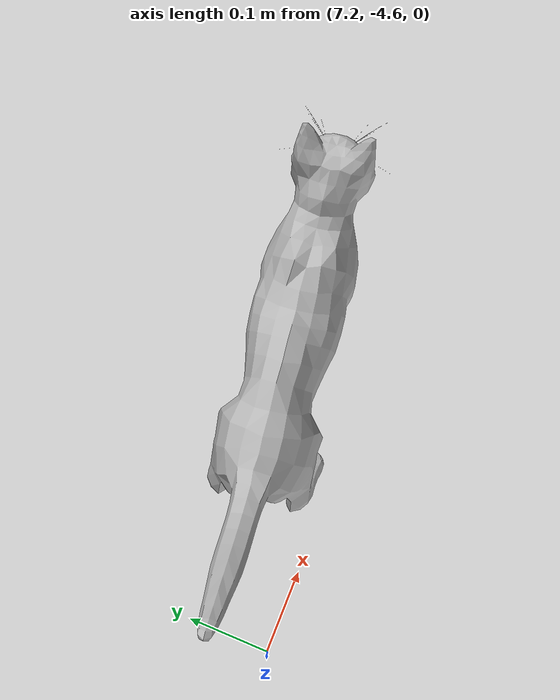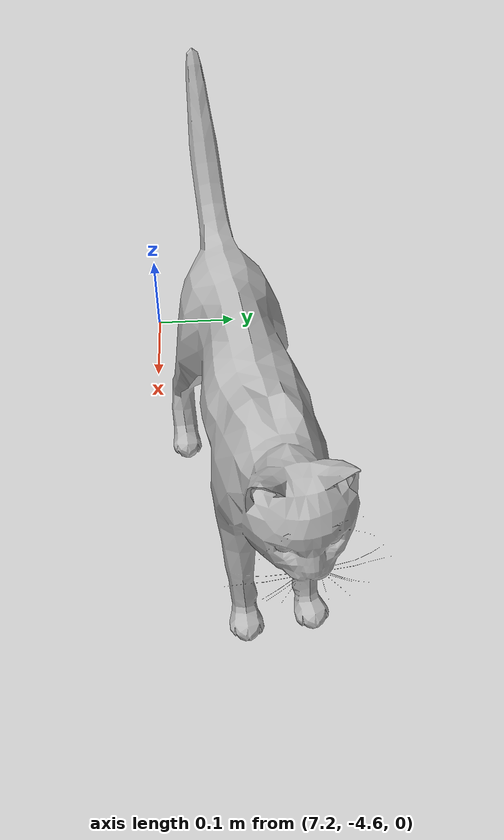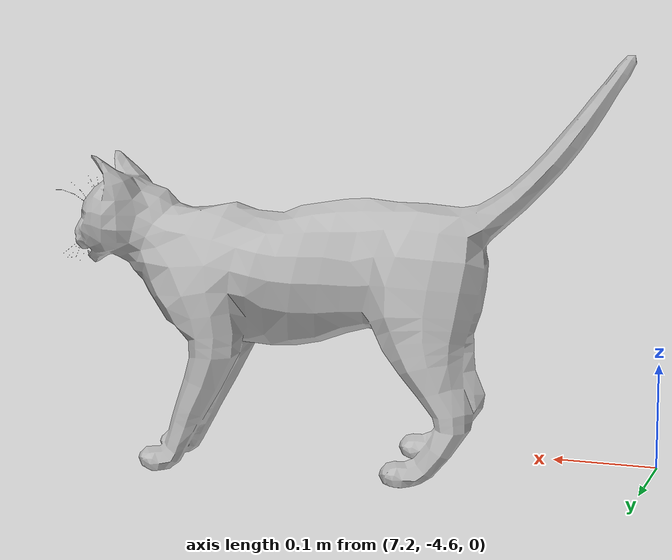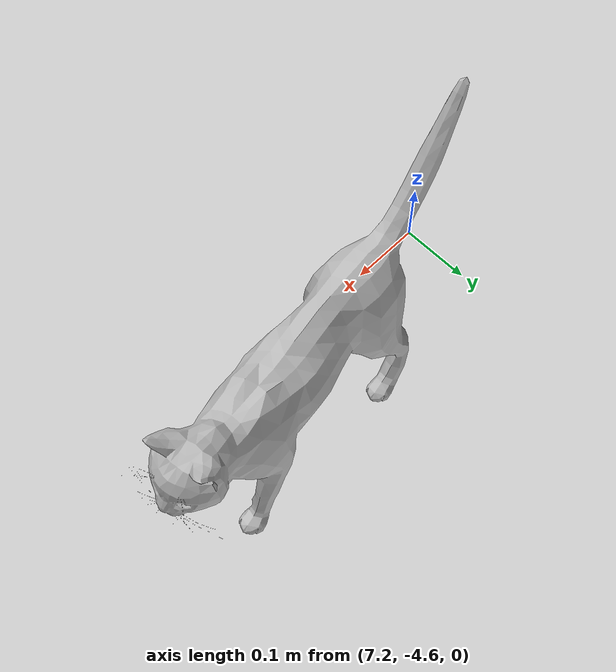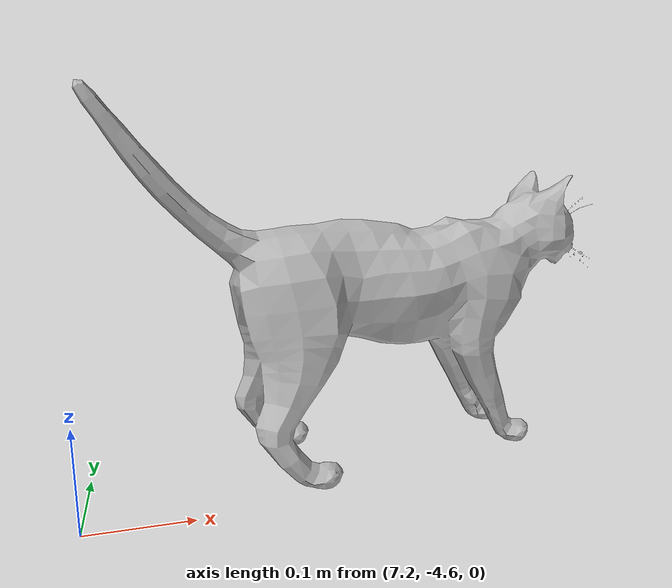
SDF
<?xml version="1.0" ?>
<!-- |    This document was autogenerated by xacro from /tmp/tmptce07d9g.xacro         | -->
<!-- |    EDITING THIS FILE BY HAND IS NOT RECOMMENDED                                 | -->
<sdf version="1.7">
  <model name="cat_goal_3_2">
    <static>1</static>
    <pose>7.5 -4.5 0.0 0.0 0.0 0.1416</pose>
    <link name="link">
      <visual name="visual">
        <geometry>
          <mesh>
            <uri>file:///home/vlad/project/src/tank_robot/meshes/cat_3/model.dae</uri>
            <scale>0.4 0.4 0.4</scale>
          </mesh>
        </geometry>
      </visual>
      <collision name="collision">
        <pose>0 0 0.21040000000000003</pose>
        <geometry>
          <box>
            <size>0.20400000000000001 0.05488 0.21040000000000003</size>
          </box>
        </geometry>
      </collision>
    </link>
  </model>
</sdf>
